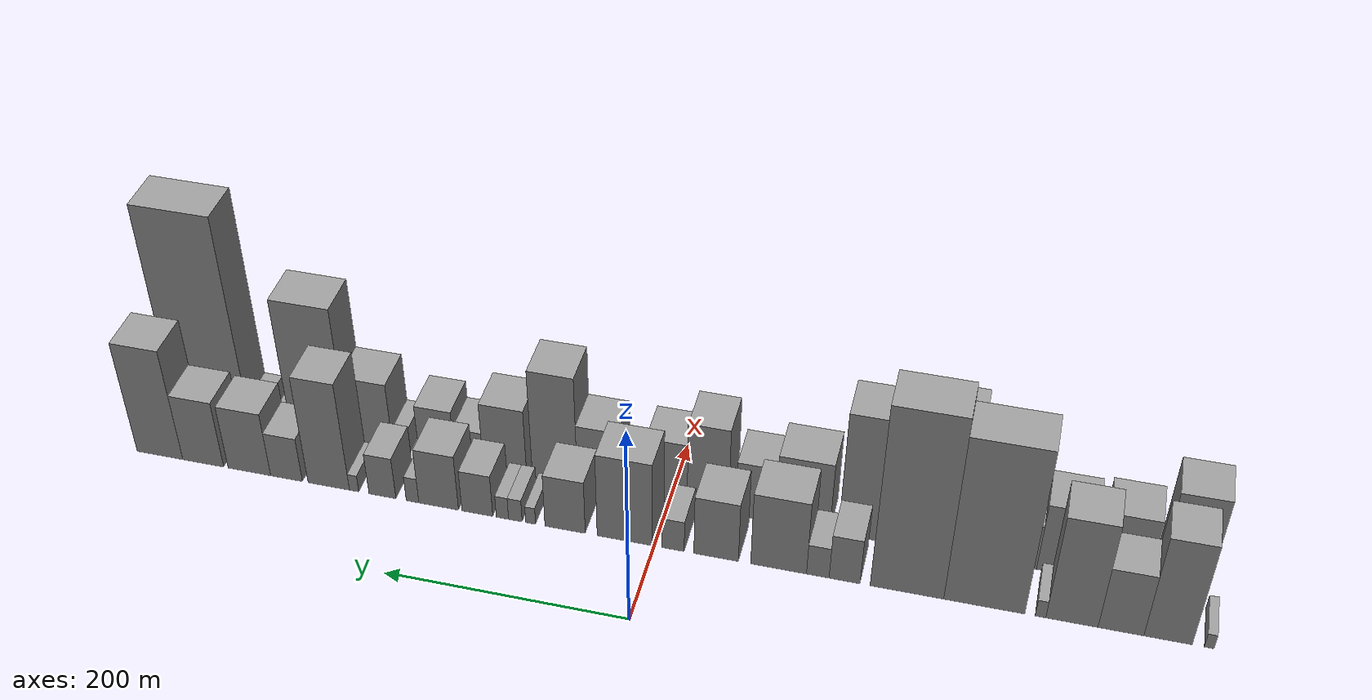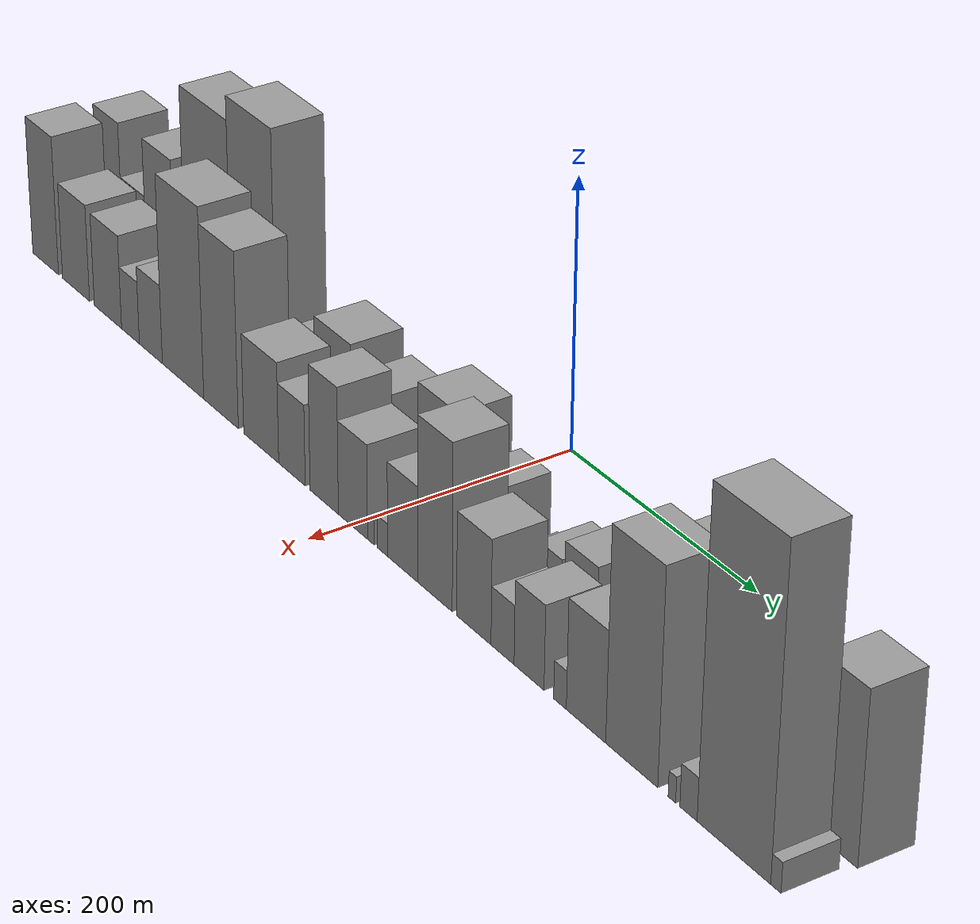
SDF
<sdf version="1.6">
 <world name="default">
  <scene>
   <sky><clouds><speed>12</speed></clouds></sky>
   <ambient>0.4 0.4 0.4 1</ambient>
   <background>0.7 0.7 0.7 1</background>
   <shadows>1</shadows>
  </scene>
  <gravity>0 0 -9.8066</gravity>
  <magnetic_field>6e-06 2.3e-05 -4.2e-05</magnetic_field>
  <physics default="0" name="default_physics" type="ode">
   <ode>
    <solver>
     <type>quick</type>
     <iters>10</iters>
     <sor>1.0</sor>
     <use_dynamic_moi_rescaling>0</use_dynamic_moi_rescaling>
    </solver>
    <constraints>
     <cfm>0</cfm>
     <erp>0.2</erp>
     <contact_max_correcting_vel>100</contact_max_correcting_vel>
     <contact_surface_layer>0.001</contact_surface_layer>
    </constraints>
   </ode>
   <max_step_size>0.004</max_step_size>
   <real_time_factor>1</real_time_factor>
   <real_time_update_rate>250</real_time_update_rate>
  </physics>
  <light name="sun" type="directional">
   <pose>0 0 10 0 0 0</pose>
   <diffuse>0.8 0.8 0.8 1</diffuse>
   <specular>0.2 0.2 0.2 1</specular>
   <attenuation>
    <range>1000</range>
    <constant>0.9</constant>
    <linear>0.01</linear>
    <quadratic>0.001</quadratic>
   </attenuation>
   <direction>-0.5 0.1 -0.9</direction>
  </light>
  <model name="building_1">
   <static>1</static>
   <pose>100.0000 -434.3636 0 0.000000 0.000000 0.000000</pose>
   <link name="link">
    <pose>0 0 7.50 0 0 0</pose>
    <collision name="collision"><geometry><box><size>40.0000 7.2728 15.0000</size></box></geometry></collision>
    <visual name="visual">
     <cast_shadows>0</cast_shadows>
     <geometry><box><size>40.0000 7.2728 15.0000</size></box></geometry>
     <material>
      <script>
       <uri>model://grey_wall/materials/scripts</uri>
       <uri>model://grey_wall/materials/textures</uri>
       <name>vrc/grey_wall</name>
      </script>
     </material>
    </visual>
   </link>
  </model>
  <model name="building_2">
   <static>1</static>
   <pose>100.0000 -403.6279 0 0.000000 0.000000 0.000000</pose>
   <link name="link">
    <pose>0 0 54.00 0 0 0</pose>
    <collision name="collision"><geometry><box><size>40.0000 36.1987 108.0000</size></box></geometry></collision>
    <visual name="visual">
     <cast_shadows>0</cast_shadows>
     <geometry><box><size>40.0000 36.1987 108.0000</size></box></geometry>
     <material>
      <script>
       <uri>model://grey_wall/materials/scripts</uri>
       <uri>model://grey_wall/materials/textures</uri>
       <name>vrc/grey_wall</name>
      </script>
     </material>
    </visual>
   </link>
  </model>
  <model name="building_3">
   <static>1</static>
   <pose>100.0000 -368.2013 0 0.000000 0.000000 0.000000</pose>
   <link name="link">
    <pose>0 0 33.00 0 0 0</pose>
    <collision name="collision"><geometry><box><size>40.0000 34.6544 66.0000</size></box></geometry></collision>
    <visual name="visual">
     <cast_shadows>0</cast_shadows>
     <geometry><box><size>40.0000 34.6544 66.0000</size></box></geometry>
     <material>
      <script>
       <uri>model://grey_wall/materials/scripts</uri>
       <uri>model://grey_wall/materials/textures</uri>
       <name>vrc/grey_wall</name>
      </script>
     </material>
    </visual>
   </link>
  </model>
  <model name="building_4">
   <static>1</static>
   <pose>100.0000 -331.0256 0 0.000000 0.000000 0.000000</pose>
   <link name="link">
    <pose>0 0 55.50 0 0 0</pose>
    <collision name="collision"><geometry><box><size>40.0000 39.6970 111.0000</size></box></geometry></collision>
    <visual name="visual">
     <cast_shadows>0</cast_shadows>
     <geometry><box><size>40.0000 39.6970 111.0000</size></box></geometry>
     <material>
      <script>
       <uri>model://grey_wall/materials/scripts</uri>
       <uri>model://grey_wall/materials/textures</uri>
       <name>vrc/grey_wall</name>
      </script>
     </material>
    </visual>
   </link>
  </model>
  <model name="building_5">
   <static>1</static>
   <pose>100.0000 -307.1409 0 0.000000 0.000000 0.000000</pose>
   <link name="link">
    <pose>0 0 9.00 0 0 0</pose>
    <collision name="collision"><geometry><box><size>40.0000 8.0724 18.0000</size></box></geometry></collision>
    <visual name="visual">
     <cast_shadows>0</cast_shadows>
     <geometry><box><size>40.0000 8.0724 18.0000</size></box></geometry>
     <material>
      <script>
       <uri>model://grey_wall/materials/scripts</uri>
       <uri>model://grey_wall/materials/textures</uri>
       <name>vrc/grey_wall</name>
      </script>
     </material>
    </visual>
   </link>
  </model>
  <model name="building_6">
   <static>1</static>
   <pose>100.0000 -263.6984 0 0.000000 0.000000 0.000000</pose>
   <link name="link">
    <pose>0 0 87.00 0 0 0</pose>
    <collision name="collision"><geometry><box><size>40.0000 62.8126 174.0000</size></box></geometry></collision>
    <visual name="visual">
     <cast_shadows>0</cast_shadows>
     <geometry><box><size>40.0000 62.8126 174.0000</size></box></geometry>
     <material>
      <script>
       <uri>model://grey_wall/materials/scripts</uri>
       <uri>model://grey_wall/materials/textures</uri>
       <name>vrc/grey_wall</name>
      </script>
     </material>
    </visual>
   </link>
  </model>
  <model name="building_7">
   <static>1</static>
   <pose>100.0000 -203.3471 0 0.000000 0.000000 0.000000</pose>
   <link name="link">
    <pose>0 0 96.00 0 0 0</pose>
    <collision name="collision"><geometry><box><size>40.0000 57.8900 192.0000</size></box></geometry></collision>
    <visual name="visual">
     <cast_shadows>0</cast_shadows>
     <geometry><box><size>40.0000 57.8900 192.0000</size></box></geometry>
     <material>
      <script>
       <uri>model://grey_wall/materials/scripts</uri>
       <uri>model://grey_wall/materials/textures</uri>
       <name>vrc/grey_wall</name>
      </script>
     </material>
    </visual>
   </link>
  </model>
  <model name="building_8">
   <static>1</static>
   <pose>100.0000 -154.1093 0 0.000000 0.000000 0.000000</pose>
   <link name="link">
    <pose>0 0 24.00 0 0 0</pose>
    <collision name="collision"><geometry><box><size>40.0000 24.5856 48.0000</size></box></geometry></collision>
    <visual name="visual">
     <cast_shadows>0</cast_shadows>
     <geometry><box><size>40.0000 24.5856 48.0000</size></box></geometry>
     <material>
      <script>
       <uri>model://grey_wall/materials/scripts</uri>
       <uri>model://grey_wall/materials/textures</uri>
       <name>vrc/grey_wall</name>
      </script>
     </material>
    </visual>
   </link>
  </model>
  <model name="building_9">
   <static>1</static>
   <pose>100.0000 -132.7750 0 0.000000 0.000000 0.000000</pose>
   <link name="link">
    <pose>0 0 16.50 0 0 0</pose>
    <collision name="collision"><geometry><box><size>40.0000 18.0830 33.0000</size></box></geometry></collision>
    <visual name="visual">
     <cast_shadows>0</cast_shadows>
     <geometry><box><size>40.0000 18.0830 33.0000</size></box></geometry>
     <material>
      <script>
       <uri>model://grey_wall/materials/scripts</uri>
       <uri>model://grey_wall/materials/textures</uri>
       <name>vrc/grey_wall</name>
      </script>
     </material>
    </visual>
   </link>
  </model>
  <model name="building_10">
   <static>1</static>
   <pose>100.0000 -101.2416 0 0.000000 0.000000 0.000000</pose>
   <link name="link">
    <pose>0 0 39.00 0 0 0</pose>
    <collision name="collision"><geometry><box><size>40.0000 44.9838 78.0000</size></box></geometry></collision>
    <visual name="visual">
     <cast_shadows>0</cast_shadows>
     <geometry><box><size>40.0000 44.9838 78.0000</size></box></geometry>
     <material>
      <script>
       <uri>model://grey_wall/materials/scripts</uri>
       <uri>model://grey_wall/materials/textures</uri>
       <name>vrc/grey_wall</name>
      </script>
     </material>
    </visual>
   </link>
  </model>
  <model name="building_11">
   <static>1</static>
   <pose>100.0000 -50.6035 0 0.000000 0.000000 0.000000</pose>
   <link name="link">
    <pose>0 0 31.50 0 0 0</pose>
    <collision name="collision"><geometry><box><size>40.0000 36.2923 63.0000</size></box></geometry></collision>
    <visual name="visual">
     <cast_shadows>0</cast_shadows>
     <geometry><box><size>40.0000 36.2923 63.0000</size></box></geometry>
     <material>
      <script>
       <uri>model://grey_wall/materials/scripts</uri>
       <uri>model://grey_wall/materials/textures</uri>
       <name>vrc/grey_wall</name>
      </script>
     </material>
    </visual>
   </link>
  </model>
  <model name="building_12">
   <static>1</static>
   <pose>100.0000 -15.4058 0 0.000000 0.000000 0.000000</pose>
   <link name="link">
    <pose>0 0 16.50 0 0 0</pose>
    <collision name="collision"><geometry><box><size>40.0000 18.1030 33.0000</size></box></geometry></collision>
    <visual name="visual">
     <cast_shadows>0</cast_shadows>
     <geometry><box><size>40.0000 18.1030 33.0000</size></box></geometry>
     <material>
      <script>
       <uri>model://grey_wall/materials/scripts</uri>
       <uri>model://grey_wall/materials/textures</uri>
       <name>vrc/grey_wall</name>
      </script>
     </material>
    </visual>
   </link>
  </model>
  <model name="building_13">
   <static>1</static>
   <pose>100.0000 24.6257 0 0.000000 0.000000 0.000000</pose>
   <link name="link">
    <pose>0 0 45.00 0 0 0</pose>
    <collision name="collision"><geometry><box><size>40.0000 45.9600 90.0000</size></box></geometry></collision>
    <visual name="visual">
     <cast_shadows>0</cast_shadows>
     <geometry><box><size>40.0000 45.9600 90.0000</size></box></geometry>
     <material>
      <script>
       <uri>model://grey_wall/materials/scripts</uri>
       <uri>model://grey_wall/materials/textures</uri>
       <name>vrc/grey_wall</name>
      </script>
     </material>
    </visual>
   </link>
  </model>
  <model name="building_14">
   <static>1</static>
   <pose>100.0000 74.5222 0 0.000000 0.000000 0.000000</pose>
   <link name="link">
    <pose>0 0 28.50 0 0 0</pose>
    <collision name="collision"><geometry><box><size>40.0000 33.8331 57.0000</size></box></geometry></collision>
    <visual name="visual">
     <cast_shadows>0</cast_shadows>
     <geometry><box><size>40.0000 33.8331 57.0000</size></box></geometry>
     <material>
      <script>
       <uri>model://grey_wall/materials/scripts</uri>
       <uri>model://grey_wall/materials/textures</uri>
       <name>vrc/grey_wall</name>
      </script>
     </material>
    </visual>
   </link>
  </model>
  <model name="building_15">
   <static>1</static>
   <pose>100.0000 103.6076 0 0.000000 0.000000 0.000000</pose>
   <link name="link">
    <pose>0 0 9.00 0 0 0</pose>
    <collision name="collision"><geometry><box><size>40.0000 8.3377 18.0000</size></box></geometry></collision>
    <visual name="visual">
     <cast_shadows>0</cast_shadows>
     <geometry><box><size>40.0000 8.3377 18.0000</size></box></geometry>
     <material>
      <script>
       <uri>model://grey_wall/materials/scripts</uri>
       <uri>model://grey_wall/materials/textures</uri>
       <name>vrc/grey_wall</name>
      </script>
     </material>
    </visual>
   </link>
  </model>
  <model name="building_16">
   <static>1</static>
   <pose>100.0000 116.5415 0 0.000000 0.000000 0.000000</pose>
   <link name="link">
    <pose>0 0 12.00 0 0 0</pose>
    <collision name="collision"><geometry><box><size>40.0000 11.5301 24.0000</size></box></geometry></collision>
    <visual name="visual">
     <cast_shadows>0</cast_shadows>
     <geometry><box><size>40.0000 11.5301 24.0000</size></box></geometry>
     <material>
      <script>
       <uri>model://grey_wall/materials/scripts</uri>
       <uri>model://grey_wall/materials/textures</uri>
       <name>vrc/grey_wall</name>
      </script>
     </material>
    </visual>
   </link>
  </model>
  <model name="building_17">
   <static>1</static>
   <pose>100.0000 127.5375 0 0.000000 0.000000 0.000000</pose>
   <link name="link">
    <pose>0 0 12.00 0 0 0</pose>
    <collision name="collision"><geometry><box><size>40.0000 10.4619 24.0000</size></box></geometry></collision>
    <visual name="visual">
     <cast_shadows>0</cast_shadows>
     <geometry><box><size>40.0000 10.4619 24.0000</size></box></geometry>
     <material>
      <script>
       <uri>model://grey_wall/materials/scripts</uri>
       <uri>model://grey_wall/materials/textures</uri>
       <name>vrc/grey_wall</name>
      </script>
     </material>
    </visual>
   </link>
  </model>
  <model name="building_18">
   <static>1</static>
   <pose>100.0000 148.9427 0 0.000000 0.000000 0.000000</pose>
   <link name="link">
    <pose>0 0 22.50 0 0 0</pose>
    <collision name="collision"><geometry><box><size>40.0000 26.3484 45.0000</size></box></geometry></collision>
    <visual name="visual">
     <cast_shadows>0</cast_shadows>
     <geometry><box><size>40.0000 26.3484 45.0000</size></box></geometry>
     <material>
      <script>
       <uri>model://grey_wall/materials/scripts</uri>
       <uri>model://grey_wall/materials/textures</uri>
       <name>vrc/grey_wall</name>
      </script>
     </material>
    </visual>
   </link>
  </model>
  <model name="building_19">
   <static>1</static>
   <pose>100.0000 182.2461 0 0.000000 0.000000 0.000000</pose>
   <link name="link">
    <pose>0 0 30.00 0 0 0</pose>
    <collision name="collision"><geometry><box><size>40.0000 34.2584 60.0000</size></box></geometry></collision>
    <visual name="visual">
     <cast_shadows>0</cast_shadows>
     <geometry><box><size>40.0000 34.2584 60.0000</size></box></geometry>
     <material>
      <script>
       <uri>model://grey_wall/materials/scripts</uri>
       <uri>model://grey_wall/materials/textures</uri>
       <name>vrc/grey_wall</name>
      </script>
     </material>
    </visual>
   </link>
  </model>
  <model name="building_20">
   <static>1</static>
   <pose>100.0000 204.8262 0 0.000000 0.000000 0.000000</pose>
   <link name="link">
    <pose>0 0 13.50 0 0 0</pose>
    <collision name="collision"><geometry><box><size>40.0000 10.9018 27.0000</size></box></geometry></collision>
    <visual name="visual">
     <cast_shadows>0</cast_shadows>
     <geometry><box><size>40.0000 10.9018 27.0000</size></box></geometry>
     <material>
      <script>
       <uri>model://grey_wall/materials/scripts</uri>
       <uri>model://grey_wall/materials/textures</uri>
       <name>vrc/grey_wall</name>
      </script>
     </material>
    </visual>
   </link>
  </model>
  <model name="building_21">
   <static>1</static>
   <pose>100.0000 231.0341 0 0.000000 0.000000 0.000000</pose>
   <link name="link">
    <pose>0 0 22.50 0 0 0</pose>
    <collision name="collision"><geometry><box><size>40.0000 23.5141 45.0000</size></box></geometry></collision>
    <visual name="visual">
     <cast_shadows>0</cast_shadows>
     <geometry><box><size>40.0000 23.5141 45.0000</size></box></geometry>
     <material>
      <script>
       <uri>model://grey_wall/materials/scripts</uri>
       <uri>model://grey_wall/materials/textures</uri>
       <name>vrc/grey_wall</name>
      </script>
     </material>
    </visual>
   </link>
  </model>
  <model name="building_22">
   <static>1</static>
   <pose>100.0000 255.8739 0 0.000000 0.000000 0.000000</pose>
   <link name="link">
    <pose>0 0 9.00 0 0 0</pose>
    <collision name="collision"><geometry><box><size>40.0000 8.1655 18.0000</size></box></geometry></collision>
    <visual name="visual">
     <cast_shadows>0</cast_shadows>
     <geometry><box><size>40.0000 8.1655 18.0000</size></box></geometry>
     <material>
      <script>
       <uri>model://grey_wall/materials/scripts</uri>
       <uri>model://grey_wall/materials/textures</uri>
       <name>vrc/grey_wall</name>
      </script>
     </material>
    </visual>
   </link>
  </model>
  <model name="building_23">
   <static>1</static>
   <pose>100.0000 278.2463 0 0.000000 0.000000 0.000000</pose>
   <link name="link">
    <pose>0 0 58.50 0 0 0</pose>
    <collision name="collision"><geometry><box><size>40.0000 36.5794 117.0000</size></box></geometry></collision>
    <visual name="visual">
     <cast_shadows>0</cast_shadows>
     <geometry><box><size>40.0000 36.5794 117.0000</size></box></geometry>
     <material>
      <script>
       <uri>model://grey_wall/materials/scripts</uri>
       <uri>model://grey_wall/materials/textures</uri>
       <name>vrc/grey_wall</name>
      </script>
     </material>
    </visual>
   </link>
  </model>
  <model name="building_24">
   <static>1</static>
   <pose>100.0000 315.6648 0 0.000000 0.000000 0.000000</pose>
   <link name="link">
    <pose>0 0 24.00 0 0 0</pose>
    <collision name="collision"><geometry><box><size>40.0000 28.2575 48.0000</size></box></geometry></collision>
    <visual name="visual">
     <cast_shadows>0</cast_shadows>
     <geometry><box><size>40.0000 28.2575 48.0000</size></box></geometry>
     <material>
      <script>
       <uri>model://grey_wall/materials/scripts</uri>
       <uri>model://grey_wall/materials/textures</uri>
       <name>vrc/grey_wall</name>
      </script>
     </material>
    </visual>
   </link>
  </model>
  <model name="building_25">
   <static>1</static>
   <pose>100.0000 348.8951 0 0.000000 0.000000 0.000000</pose>
   <link name="link">
    <pose>0 0 34.50 0 0 0</pose>
    <collision name="collision"><geometry><box><size>40.0000 38.2031 69.0000</size></box></geometry></collision>
    <visual name="visual">
     <cast_shadows>0</cast_shadows>
     <geometry><box><size>40.0000 38.2031 69.0000</size></box></geometry>
     <material>
      <script>
       <uri>model://grey_wall/materials/scripts</uri>
       <uri>model://grey_wall/materials/textures</uri>
       <name>vrc/grey_wall</name>
      </script>
     </material>
    </visual>
   </link>
  </model>
  <model name="building_26">
   <static>1</static>
   <pose>100.0000 390.5127 0 0.000000 0.000000 0.000000</pose>
   <link name="link">
    <pose>0 0 36.00 0 0 0</pose>
    <collision name="collision"><geometry><box><size>40.0000 37.0322 72.0000</size></box></geometry></collision>
    <visual name="visual">
     <cast_shadows>0</cast_shadows>
     <geometry><box><size>40.0000 37.0322 72.0000</size></box></geometry>
     <material>
      <script>
       <uri>model://grey_wall/materials/scripts</uri>
       <uri>model://grey_wall/materials/textures</uri>
       <name>vrc/grey_wall</name>
      </script>
     </material>
    </visual>
   </link>
  </model>
  <model name="building_27">
   <static>1</static>
   <pose>100.0000 429.8774 0 0.000000 0.000000 0.000000</pose>
   <link name="link">
    <pose>0 0 60.00 0 0 0</pose>
    <collision name="collision"><geometry><box><size>40.0000 41.6971 120.0000</size></box></geometry></collision>
    <visual name="visual">
     <cast_shadows>0</cast_shadows>
     <geometry><box><size>40.0000 41.6971 120.0000</size></box></geometry>
     <material>
      <script>
       <uri>model://grey_wall/materials/scripts</uri>
       <uri>model://grey_wall/materials/textures</uri>
       <name>vrc/grey_wall</name>
      </script>
     </material>
    </visual>
   </link>
  </model>
  <model name="building_28">
   <static>1</static>
   <pose>149.0000 -410.6473 0 0.000000 0.000000 0.000000</pose>
   <link name="link">
    <pose>0 0 54.00 0 0 0</pose>
    <collision name="collision"><geometry><box><size>40.0000 38.7054 108.0000</size></box></geometry></collision>
    <visual name="visual">
     <cast_shadows>0</cast_shadows>
     <geometry><box><size>40.0000 38.7054 108.0000</size></box></geometry>
     <material>
      <script>
       <uri>model://grey_wall/materials/scripts</uri>
       <uri>model://grey_wall/materials/textures</uri>
       <name>vrc/grey_wall</name>
      </script>
     </material>
    </visual>
   </link>
  </model>
  <model name="building_29">
   <static>1</static>
   <pose>149.0000 -365.3888 0 0.000000 0.000000 0.000000</pose>
   <link name="link">
    <pose>0 0 37.50 0 0 0</pose>
    <collision name="collision"><geometry><box><size>40.0000 39.8117 75.0000</size></box></geometry></collision>
    <visual name="visual">
     <cast_shadows>0</cast_shadows>
     <geometry><box><size>40.0000 39.8117 75.0000</size></box></geometry>
     <material>
      <script>
       <uri>model://grey_wall/materials/scripts</uri>
       <uri>model://grey_wall/materials/textures</uri>
       <name>vrc/grey_wall</name>
      </script>
     </material>
    </visual>
   </link>
  </model>
  <model name="building_30">
   <static>1</static>
   <pose>149.0000 -318.9288 0 0.000000 0.000000 0.000000</pose>
   <link name="link">
    <pose>0 0 36.00 0 0 0</pose>
    <collision name="collision"><geometry><box><size>40.0000 39.1082 72.0000</size></box></geometry></collision>
    <visual name="visual">
     <cast_shadows>0</cast_shadows>
     <geometry><box><size>40.0000 39.1082 72.0000</size></box></geometry>
     <material>
      <script>
       <uri>model://grey_wall/materials/scripts</uri>
       <uri>model://grey_wall/materials/textures</uri>
       <name>vrc/grey_wall</name>
      </script>
     </material>
    </visual>
   </link>
  </model>
  <model name="building_31">
   <static>1</static>
   <pose>149.0000 -286.8273 0 0.000000 0.000000 0.000000</pose>
   <link name="link">
    <pose>0 0 24.00 0 0 0</pose>
    <collision name="collision"><geometry><box><size>40.0000 25.0948 48.0000</size></box></geometry></collision>
    <visual name="visual">
     <cast_shadows>0</cast_shadows>
     <geometry><box><size>40.0000 25.0948 48.0000</size></box></geometry>
     <material>
      <script>
       <uri>model://grey_wall/materials/scripts</uri>
       <uri>model://grey_wall/materials/textures</uri>
       <name>vrc/grey_wall</name>
      </script>
     </material>
    </visual>
   </link>
  </model>
  <model name="building_32">
   <static>1</static>
   <pose>149.0000 -258.2773 0 0.000000 0.000000 0.000000</pose>
   <link name="link">
    <pose>0 0 30.00 0 0 0</pose>
    <collision name="collision"><geometry><box><size>40.0000 32.0053 60.0000</size></box></geometry></collision>
    <visual name="visual">
     <cast_shadows>0</cast_shadows>
     <geometry><box><size>40.0000 32.0053 60.0000</size></box></geometry>
     <material>
      <script>
       <uri>model://grey_wall/materials/scripts</uri>
       <uri>model://grey_wall/materials/textures</uri>
       <name>vrc/grey_wall</name>
      </script>
     </material>
    </visual>
   </link>
  </model>
  <model name="building_33">
   <static>1</static>
   <pose>149.0000 -214.2529 0 0.000000 0.000000 0.000000</pose>
   <link name="link">
    <pose>0 0 72.00 0 0 0</pose>
    <collision name="collision"><geometry><box><size>40.0000 56.0434 144.0000</size></box></geometry></collision>
    <visual name="visual">
     <cast_shadows>0</cast_shadows>
     <geometry><box><size>40.0000 56.0434 144.0000</size></box></geometry>
     <material>
      <script>
       <uri>model://grey_wall/materials/scripts</uri>
       <uri>model://grey_wall/materials/textures</uri>
       <name>vrc/grey_wall</name>
      </script>
     </material>
    </visual>
   </link>
  </model>
  <model name="building_34">
   <static>1</static>
   <pose>149.0000 -163.4275 0 0.000000 0.000000 0.000000</pose>
   <link name="link">
    <pose>0 0 66.00 0 0 0</pose>
    <collision name="collision"><geometry><box><size>40.0000 45.6074 132.0000</size></box></geometry></collision>
    <visual name="visual">
     <cast_shadows>0</cast_shadows>
     <geometry><box><size>40.0000 45.6074 132.0000</size></box></geometry>
     <material>
      <script>
       <uri>model://grey_wall/materials/scripts</uri>
       <uri>model://grey_wall/materials/textures</uri>
       <name>vrc/grey_wall</name>
      </script>
     </material>
    </visual>
   </link>
  </model>
  <model name="building_35">
   <static>1</static>
   <pose>149.0000 -111.2866 0 0.000000 0.000000 0.000000</pose>
   <link name="link">
    <pose>0 0 37.50 0 0 0</pose>
    <collision name="collision"><geometry><box><size>40.0000 44.6745 75.0000</size></box></geometry></collision>
    <visual name="visual">
     <cast_shadows>0</cast_shadows>
     <geometry><box><size>40.0000 44.6745 75.0000</size></box></geometry>
     <material>
      <script>
       <uri>model://grey_wall/materials/scripts</uri>
       <uri>model://grey_wall/materials/textures</uri>
       <name>vrc/grey_wall</name>
      </script>
     </material>
    </visual>
   </link>
  </model>
  <model name="building_36">
   <static>1</static>
   <pose>149.0000 -72.3836 0 0.000000 0.000000 0.000000</pose>
   <link name="link">
    <pose>0 0 30.00 0 0 0</pose>
    <collision name="collision"><geometry><box><size>40.0000 33.1315 60.0000</size></box></geometry></collision>
    <visual name="visual">
     <cast_shadows>0</cast_shadows>
     <geometry><box><size>40.0000 33.1315 60.0000</size></box></geometry>
     <material>
      <script>
       <uri>model://grey_wall/materials/scripts</uri>
       <uri>model://grey_wall/materials/textures</uri>
       <name>vrc/grey_wall</name>
      </script>
     </material>
    </visual>
   </link>
  </model>
  <model name="building_37">
   <static>1</static>
   <pose>149.0000 -32.5348 0 0.000000 0.000000 0.000000</pose>
   <link name="link">
    <pose>0 0 46.50 0 0 0</pose>
    <collision name="collision"><geometry><box><size>40.0000 34.5661 93.0000</size></box></geometry></collision>
    <visual name="visual">
     <cast_shadows>0</cast_shadows>
     <geometry><box><size>40.0000 34.5661 93.0000</size></box></geometry>
     <material>
      <script>
       <uri>model://grey_wall/materials/scripts</uri>
       <uri>model://grey_wall/materials/textures</uri>
       <name>vrc/grey_wall</name>
      </script>
     </material>
    </visual>
   </link>
  </model>
  <model name="building_38">
   <static>1</static>
   <pose>149.0000 2.1665 0 0.000000 0.000000 0.000000</pose>
   <link name="link">
    <pose>0 0 34.50 0 0 0</pose>
    <collision name="collision"><geometry><box><size>40.0000 34.8365 69.0000</size></box></geometry></collision>
    <visual name="visual">
     <cast_shadows>0</cast_shadows>
     <geometry><box><size>40.0000 34.8365 69.0000</size></box></geometry>
     <material>
      <script>
       <uri>model://grey_wall/materials/scripts</uri>
       <uri>model://grey_wall/materials/textures</uri>
       <name>vrc/grey_wall</name>
      </script>
     </material>
    </visual>
   </link>
  </model>
  <model name="building_39">
   <static>1</static>
   <pose>149.0000 23.4640 0 0.000000 0.000000 0.000000</pose>
   <link name="link">
    <pose>0 0 9.00 0 0 0</pose>
    <collision name="collision"><geometry><box><size>40.0000 7.7583 18.0000</size></box></geometry></collision>
    <visual name="visual">
     <cast_shadows>0</cast_shadows>
     <geometry><box><size>40.0000 7.7583 18.0000</size></box></geometry>
     <material>
      <script>
       <uri>model://grey_wall/materials/scripts</uri>
       <uri>model://grey_wall/materials/textures</uri>
       <name>vrc/grey_wall</name>
      </script>
     </material>
    </visual>
   </link>
  </model>
  <model name="building_40">
   <static>1</static>
   <pose>149.0000 37.2230 0 0.000000 0.000000 0.000000</pose>
   <link name="link">
    <pose>0 0 12.00 0 0 0</pose>
    <collision name="collision"><geometry><box><size>40.0000 11.7597 24.0000</size></box></geometry></collision>
    <visual name="visual">
     <cast_shadows>0</cast_shadows>
     <geometry><box><size>40.0000 11.7597 24.0000</size></box></geometry>
     <material>
      <script>
       <uri>model://grey_wall/materials/scripts</uri>
       <uri>model://grey_wall/materials/textures</uri>
       <name>vrc/grey_wall</name>
      </script>
     </material>
    </visual>
   </link>
  </model>
  <model name="building_41">
   <static>1</static>
   <pose>149.0000 60.5076 0 0.000000 0.000000 0.000000</pose>
   <link name="link">
    <pose>0 0 34.50 0 0 0</pose>
    <collision name="collision"><geometry><box><size>40.0000 34.8094 69.0000</size></box></geometry></collision>
    <visual name="visual">
     <cast_shadows>0</cast_shadows>
     <geometry><box><size>40.0000 34.8094 69.0000</size></box></geometry>
     <material>
      <script>
       <uri>model://grey_wall/materials/scripts</uri>
       <uri>model://grey_wall/materials/textures</uri>
       <name>vrc/grey_wall</name>
      </script>
     </material>
    </visual>
   </link>
  </model>
  <model name="building_42">
   <static>1</static>
   <pose>149.0000 97.3107 0 0.000000 0.000000 0.000000</pose>
   <link name="link">
    <pose>0 0 60.00 0 0 0</pose>
    <collision name="collision"><geometry><box><size>40.0000 38.7968 120.0000</size></box></geometry></collision>
    <visual name="visual">
     <cast_shadows>0</cast_shadows>
     <geometry><box><size>40.0000 38.7968 120.0000</size></box></geometry>
     <material>
      <script>
       <uri>model://grey_wall/materials/scripts</uri>
       <uri>model://grey_wall/materials/textures</uri>
       <name>vrc/grey_wall</name>
      </script>
     </material>
    </visual>
   </link>
  </model>
  <model name="building_43">
   <static>1</static>
   <pose>149.0000 140.5461 0 0.000000 0.000000 0.000000</pose>
   <link name="link">
    <pose>0 0 37.50 0 0 0</pose>
    <collision name="collision"><geometry><box><size>40.0000 37.6740 75.0000</size></box></geometry></collision>
    <visual name="visual">
     <cast_shadows>0</cast_shadows>
     <geometry><box><size>40.0000 37.6740 75.0000</size></box></geometry>
     <material>
      <script>
       <uri>model://grey_wall/materials/scripts</uri>
       <uri>model://grey_wall/materials/textures</uri>
       <name>vrc/grey_wall</name>
      </script>
     </material>
    </visual>
   </link>
  </model>
  <model name="building_44">
   <static>1</static>
   <pose>149.0000 171.8109 0 0.000000 0.000000 0.000000</pose>
   <link name="link">
    <pose>0 0 21.00 0 0 0</pose>
    <collision name="collision"><geometry><box><size>40.0000 24.8556 42.0000</size></box></geometry></collision>
    <visual name="visual">
     <cast_shadows>0</cast_shadows>
     <geometry><box><size>40.0000 24.8556 42.0000</size></box></geometry>
     <material>
      <script>
       <uri>model://grey_wall/materials/scripts</uri>
       <uri>model://grey_wall/materials/textures</uri>
       <name>vrc/grey_wall</name>
      </script>
     </material>
    </visual>
   </link>
  </model>
  <model name="building_45">
   <static>1</static>
   <pose>149.0000 200.0804 0 0.000000 0.000000 0.000000</pose>
   <link name="link">
    <pose>0 0 30.00 0 0 0</pose>
    <collision name="collision"><geometry><box><size>40.0000 31.6833 60.0000</size></box></geometry></collision>
    <visual name="visual">
     <cast_shadows>0</cast_shadows>
     <geometry><box><size>40.0000 31.6833 60.0000</size></box></geometry>
     <material>
      <script>
       <uri>model://grey_wall/materials/scripts</uri>
       <uri>model://grey_wall/materials/textures</uri>
       <name>vrc/grey_wall</name>
      </script>
     </material>
    </visual>
   </link>
  </model>
  <model name="building_46">
   <static>1</static>
   <pose>149.0000 232.4997 0 0.000000 0.000000 0.000000</pose>
   <link name="link">
    <pose>0 0 13.50 0 0 0</pose>
    <collision name="collision"><geometry><box><size>40.0000 13.1554 27.0000</size></box></geometry></collision>
    <visual name="visual">
     <cast_shadows>0</cast_shadows>
     <geometry><box><size>40.0000 13.1554 27.0000</size></box></geometry>
     <material>
      <script>
       <uri>model://grey_wall/materials/scripts</uri>
       <uri>model://grey_wall/materials/textures</uri>
       <name>vrc/grey_wall</name>
      </script>
     </material>
    </visual>
   </link>
  </model>
  <model name="building_47">
   <static>1</static>
   <pose>149.0000 259.1072 0 0.000000 0.000000 0.000000</pose>
   <link name="link">
    <pose>0 0 39.00 0 0 0</pose>
    <collision name="collision"><geometry><box><size>40.0000 40.0596 78.0000</size></box></geometry></collision>
    <visual name="visual">
     <cast_shadows>0</cast_shadows>
     <geometry><box><size>40.0000 40.0596 78.0000</size></box></geometry>
     <material>
      <script>
       <uri>model://grey_wall/materials/scripts</uri>
       <uri>model://grey_wall/materials/textures</uri>
       <name>vrc/grey_wall</name>
      </script>
     </material>
    </visual>
   </link>
  </model>
  <model name="building_48">
   <static>1</static>
   <pose>149.0000 304.8563 0 0.000000 0.000000 0.000000</pose>
   <link name="link">
    <pose>0 0 75.00 0 0 0</pose>
    <collision name="collision"><geometry><box><size>40.0000 51.4387 150.0000</size></box></geometry></collision>
    <visual name="visual">
     <cast_shadows>0</cast_shadows>
     <geometry><box><size>40.0000 51.4387 150.0000</size></box></geometry>
     <material>
      <script>
       <uri>model://grey_wall/materials/scripts</uri>
       <uri>model://grey_wall/materials/textures</uri>
       <name>vrc/grey_wall</name>
      </script>
     </material>
    </visual>
   </link>
  </model>
  <model name="building_49">
   <static>1</static>
   <pose>149.0000 344.2085 0 0.000000 0.000000 0.000000</pose>
   <link name="link">
    <pose>0 0 9.00 0 0 0</pose>
    <collision name="collision"><geometry><box><size>40.0000 7.2657 18.0000</size></box></geometry></collision>
    <visual name="visual">
     <cast_shadows>0</cast_shadows>
     <geometry><box><size>40.0000 7.2657 18.0000</size></box></geometry>
     <material>
      <script>
       <uri>model://grey_wall/materials/scripts</uri>
       <uri>model://grey_wall/materials/textures</uri>
       <name>vrc/grey_wall</name>
      </script>
     </material>
    </visual>
   </link>
  </model>
  <model name="building_50">
   <static>1</static>
   <pose>149.0000 360.0584 0 0.000000 0.000000 0.000000</pose>
   <link name="link">
    <pose>0 0 15.00 0 0 0</pose>
    <collision name="collision"><geometry><box><size>40.0000 16.4343 30.0000</size></box></geometry></collision>
    <visual name="visual">
     <cast_shadows>0</cast_shadows>
     <geometry><box><size>40.0000 16.4343 30.0000</size></box></geometry>
     <material>
      <script>
       <uri>model://grey_wall/materials/scripts</uri>
       <uri>model://grey_wall/materials/textures</uri>
       <name>vrc/grey_wall</name>
      </script>
     </material>
    </visual>
   </link>
  </model>
  <model name="building_51">
   <static>1</static>
   <pose>149.0000 402.3273 0 0.000000 0.000000 0.000000</pose>
   <link name="link">
    <pose>0 0 112.50 0 0 0</pose>
    <collision name="collision"><geometry><box><size>40.0000 68.1034 225.0000</size></box></geometry></collision>
    <visual name="visual">
     <cast_shadows>0</cast_shadows>
     <geometry><box><size>40.0000 68.1034 225.0000</size></box></geometry>
     <material>
      <script>
       <uri>model://grey_wall/materials/scripts</uri>
       <uri>model://grey_wall/materials/textures</uri>
       <name>vrc/grey_wall</name>
      </script>
     </material>
    </visual>
   </link>
  </model>
  <model name="building_52">
   <static>1</static>
   <pose>149.0000 441.0323 0 0.000000 0.000000 0.000000</pose>
   <link name="link">
    <pose>0 0 10.50 0 0 0</pose>
    <collision name="collision"><geometry><box><size>40.0000 9.3066 21.0000</size></box></geometry></collision>
    <visual name="visual">
     <cast_shadows>0</cast_shadows>
     <geometry><box><size>40.0000 9.3066 21.0000</size></box></geometry>
     <material>
      <script>
       <uri>model://grey_wall/materials/scripts</uri>
       <uri>model://grey_wall/materials/textures</uri>
       <name>vrc/grey_wall</name>
      </script>
     </material>
    </visual>
   </link>
  </model>
 </world>
</sdf>
